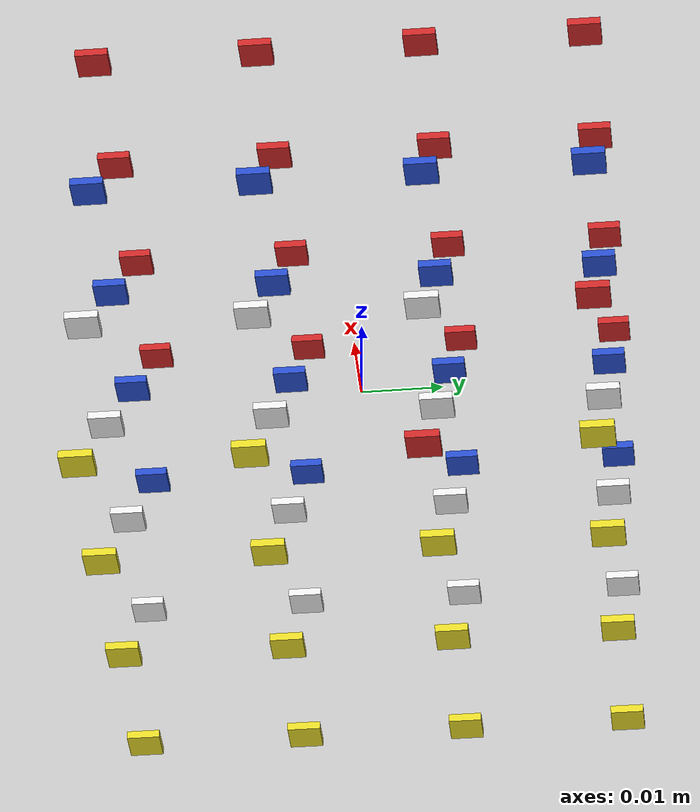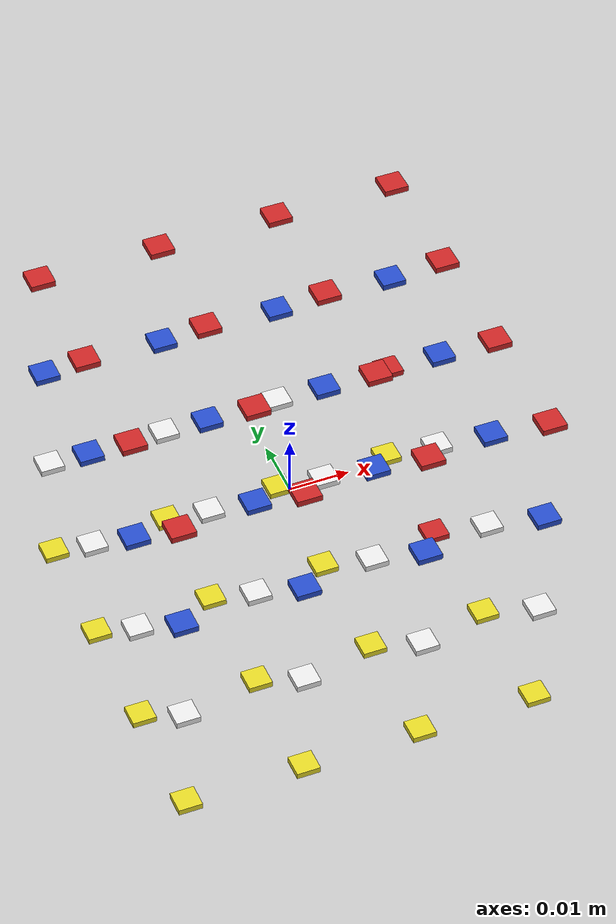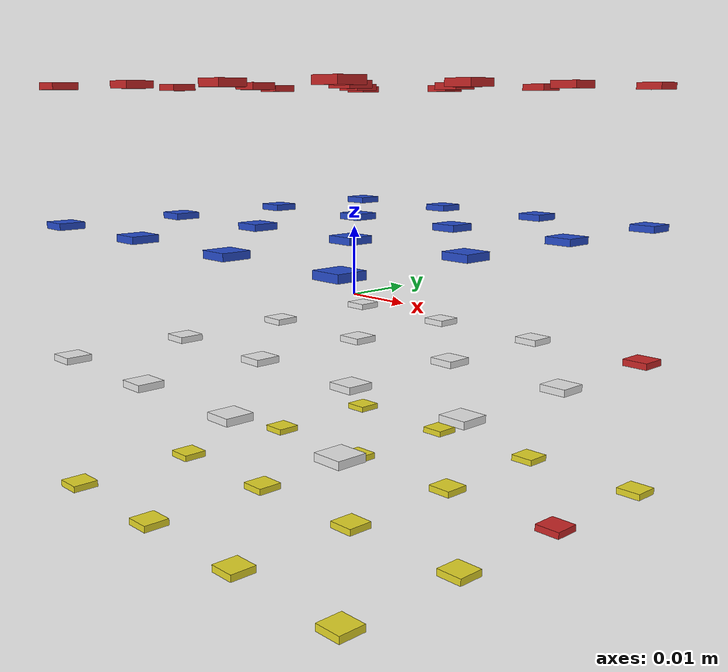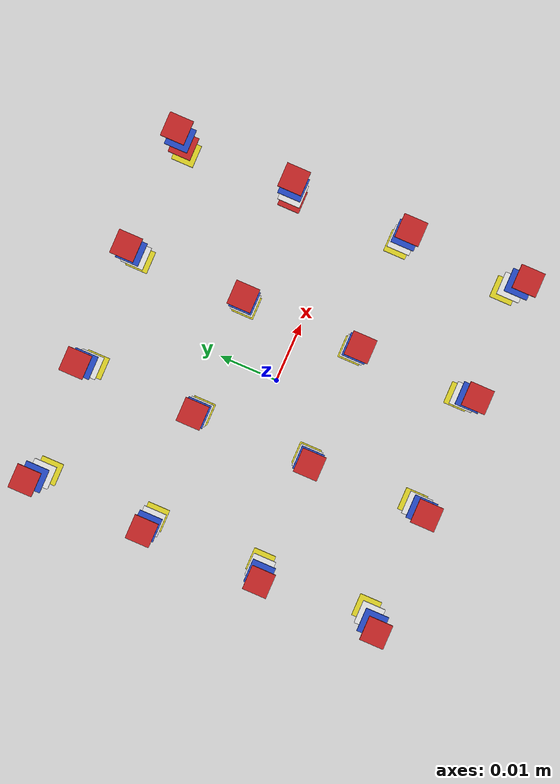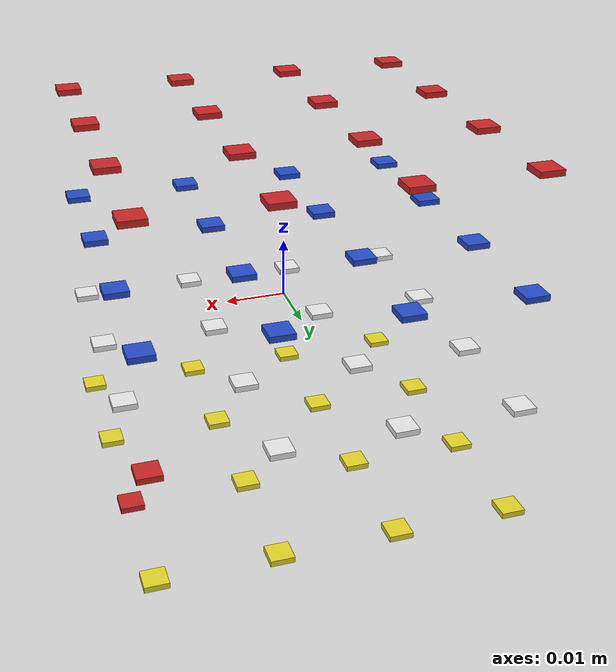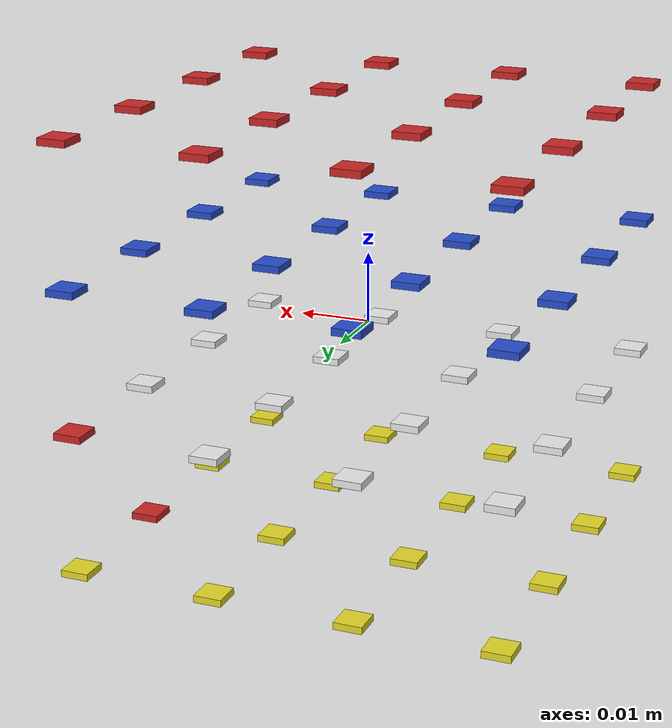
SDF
<?xml version="1.0" ?>
<sdf version='1.5'>
  <model name='imu_cube'>

<!-- 1st ----- top   4st ----- bottom -->

<!-- 1st layer  -->
    <include>
      <uri>model://MPU6050_0</uri>
      <pose>-0.03 0.03 0.03 0 0 0</pose>
    </include>
    <joint name="6050_0_joint" type="fixed">
      <child>6050_0::link</child>
      <parent>iris::base_link</parent>
    </joint>

    <include>
      <uri>model://MPU6050_1</uri>
      <pose>-0.01 0.03 0.03 0 0 0</pose>
    </include>
    <joint name="6050_1_joint" type="fixed">
      <child>6050_1::link</child>
      <parent>iris::base_link</parent>
    </joint>

    <include>
      <uri>model://MPU6050_2</uri>
      <pose>0.01 0.03 0.03 0 0 0</pose>
    </include>
    <joint name="6050_2_joint" type="fixed">
      <child>6050_2::link</child>
      <parent>iris::base_link</parent>
    </joint>

    <include>
      <uri>model://MPU6050_3</uri>
      <pose>0.03 0.03 0.03 0 0 0</pose>
    </include>
    <joint name="6050_3_joint" type="fixed">
      <child>6050_3::link</child>
      <parent>iris::base_link</parent>
    </joint>

    <include>
      <uri>model://MPU6050_4</uri>
      <pose>-0.03 0.01 0.03 0 0 0</pose>
    </include>
    <joint name="6050_4_joint" type="fixed">
      <child>6050_4::link</child>
      <parent>iris::base_link</parent>
    </joint>

    <include>
      <uri>model://MPU6050_5</uri>
      <pose>-0.01 0.01 0.03 0 0 0</pose>
    </include>
    <joint name="6050_5_joint" type="fixed">
      <child>6050_5::link</child>
      <parent>iris::base_link</parent>
    </joint>

    <include>
      <uri>model://MPU6050_6</uri>
      <pose>0.01 0.01 0.03 0 0 0</pose>
    </include>
    <joint name="6050_6_joint" type="fixed">
      <child>6050_6::link</child>
      <parent>iris::base_link</parent>
    </joint>

    <include>
      <uri>model://MPU6050_7</uri>
      <pose>0.03 0.01 0.03 0 0 0</pose>
    </include>
    <joint name="6050_7_joint" type="fixed">
      <child>6050_7::link</child>
      <parent>iris::base_link</parent>
    </joint>

    <include>
      <uri>model://MPU6050_8</uri>
      <pose>-0.03 -0.01 0.03 0 0 0</pose>
    </include>
    <joint name="6050_8_joint" type="fixed">
      <child>6050_8::link</child>
      <parent>iris::base_link</parent>
    </joint>

    <include>
      <uri>model://MPU6050_9</uri>
      <pose>-0.01 -0.01 0.03 0 0 0</pose>
    </include>
    <joint name="6050_9_joint" type="fixed">
      <child>6050_9::link</child>
      <parent>iris::base_link</parent>
    </joint>

    <include>
      <uri>model://MPU6050_10</uri>
      <pose>0.01 -0.01 0.03 0 0 0</pose>
    </include>
    <joint name="6050_10_joint" type="fixed">
      <child>6050_10::link</child>
      <parent>iris::base_link</parent>
    </joint>

    <include>
      <uri>model://MPU6050_11</uri>
      <pose>0.03 -0.01 0.03 0 0 0</pose>
    </include>
    <joint name="6050_11_joint" type="fixed">
      <child>6050_11::link</child>
      <parent>iris::base_link</parent>
    </joint>

    <include>
      <uri>model://MPU6050_12</uri>
      <pose>-0.03 -0.03 0.03 0 0 0</pose>
    </include>
    <joint name="6050_12_joint" type="fixed">
      <child>6050_12::link</child>
      <parent>iris::base_link</parent>
    </joint>

    <include>
      <uri>model://MPU6050_13</uri>
      <pose>-0.01 -0.03 0.03 0 0 0</pose>
    </include>
    <joint name="6050_13_joint" type="fixed">
      <child>6050_13::link</child>
      <parent>iris::base_link</parent>
    </joint>

    <include>
      <uri>model://MPU6050_14</uri>
      <pose>0.01 -0.03 0.03 0 0 0</pose>
    </include>
    <joint name="6050_14_joint" type="fixed">
      <child>6050_14::link</child>
      <parent>iris::base_link</parent>
    </joint>

    <include>
      <uri>model://MPU6050_15</uri>
      <pose>0.03 -0.03 0.03 0 0 0</pose>
    </include>
    <joint name="6050_15_joint" type="fixed">
      <child>6050_15::link</child>
      <parent>iris::base_link</parent>
    </joint>

<!-- 2st layer -->

    <include>
      <uri>model://MPU6500_0</uri>
      <pose>-0.03 0.03 0.01 0 0 0</pose>
    </include>
    <joint name="6500_0_joint" type="fixed">
      <child>6500_0::link</child>
      <parent>iris::base_link</parent>
    </joint>

    <include>
      <uri>model://MPU6500_1</uri>
      <pose>-0.01 0.03 0.01 0 0 0</pose>
    </include>
    <joint name="6500_1_joint" type="fixed">
      <child>6500_1::link</child>
      <parent>iris::base_link</parent>
    </joint>

    <include>
      <uri>model://MPU6500_2</uri>
      <pose>0.01 0.03 0.01 0 0 0</pose>
    </include>
    <joint name="6500_2_joint" type="fixed">
      <child>6500_2::link</child>
      <parent>iris::base_link</parent>
    </joint>

    <include>
      <uri>model://MPU6500_3</uri>
      <pose>0.03 0.03 0.01 0 0 0</pose>
    </include>
    <joint name="6500_3_joint" type="fixed">
      <child>6500_3::link</child>
      <parent>iris::base_link</parent>
    </joint>

    <include>
      <uri>model://MPU6500_4</uri>
      <pose>-0.03 0.01 0.01 0 0 0</pose>
    </include>
    <joint name="6500_4_joint" type="fixed">
      <child>6500_4::link</child>
      <parent>iris::base_link</parent>
    </joint>

    <include>
      <uri>model://MPU6500_5</uri>
      <pose>-0.01 0.01 0.01 0 0 0</pose>
    </include>
    <joint name="6500_5_joint" type="fixed">
      <child>6500_5::link</child>
      <parent>iris::base_link</parent>
    </joint>

    <include>
      <uri>model://MPU6500_6</uri>
      <pose>0.01 0.01 0.01 0 0 0</pose>
    </include>
    <joint name="6500_6_joint" type="fixed">
      <child>6500_6::link</child>
      <parent>iris::base_link</parent>
    </joint>

    <include>
      <uri>model://MPU6500_7</uri>
      <pose>0.03 0.01 0.01 0 0 0</pose>
    </include>
    <joint name="6500_7_joint" type="fixed">
      <child>6500_7::link</child>
      <parent>iris::base_link</parent>
    </joint>

    <include>
      <uri>model://MPU6500_8</uri>
      <pose>-0.03 -0.01 0.01 0 0 0</pose>
    </include>
    <joint name="6500_8_joint" type="fixed">
      <child>6500_8::link</child>
      <parent>iris::base_link</parent>
    </joint>

    <include>
      <uri>model://MPU6500_9</uri>
      <pose>-0.01 -0.01 0.01 0 0 0</pose>
    </include>
    <joint name="6500_9_joint" type="fixed">
      <child>6500_9::link</child>
      <parent>iris::base_link</parent>
    </joint>

    <include>
      <uri>model://MPU6500_10</uri>
      <pose>0.01 -0.01 0.01 0 0 0</pose>
    </include>
    <joint name="6500_10_joint" type="fixed">
      <child>6500_10::link</child>
      <parent>iris::base_link</parent>
    </joint>

    <include>
      <uri>model://MPU6500_11</uri>
      <pose>0.03 -0.01 0.01 0 0 0</pose>
    </include>
    <joint name="6500_11_joint" type="fixed">
      <child>6500_11::link</child>
      <parent>iris::base_link</parent>
    </joint>

    <include>
      <uri>model://MPU6500_12</uri>
      <pose>-0.03 -0.03 0.01 0 0 0</pose>
    </include>
    <joint name="6500_12_joint" type="fixed">
      <child>6500_12::link</child>
      <parent>iris::base_link</parent>
    </joint>

    <include>
      <uri>model://MPU6500_13</uri>
      <pose>-0.01 -0.03 0.01 0 0 0</pose>
    </include>
    <joint name="6500_13_joint" type="fixed">
      <child>6500_13::link</child>
      <parent>iris::base_link</parent>
    </joint>

    <include>
      <uri>model://MPU6500_14</uri>
      <pose>0.01 -0.03 0.01 0 0 0</pose>
    </include>
    <joint name="6500_14_joint" type="fixed">
      <child>6500_14::link</child>
      <parent>iris::base_link</parent>
    </joint>

    <include>
      <uri>model://MPU6500_15</uri>
      <pose>0.03 -0.03 0.01 0 0 0</pose>
    </include>
    <joint name="6500_15_joint" type="fixed">
      <child>6500_15::link</child>
      <parent>iris::base_link</parent>
    </joint>

<!-- 3st layer -->

    <include>
      <uri>model://MPU9150_0</uri>
      <pose>-0.03 0.03 -0.01 0 0 0</pose>
    </include>
    <joint name="9150_0_joint" type="fixed">
      <child>9150_0::link</child>
      <parent>iris::base_link</parent>
    </joint>

    <include>
      <uri>model://MPU9150_1</uri>
      <pose>-0.01 0.03 -0.01 0 0 0</pose>
    </include>
    <joint name="9150_1_joint" type="fixed">
      <child>9150_1::link</child>
      <parent>iris::base_link</parent>
    </joint>

    <include>
      <uri>model://MPU9150_2</uri>
      <pose>0.01 0.03 -0.01 0 0 0</pose>
    </include>
    <joint name="9150_2_joint" type="fixed">
      <child>9150_2::link</child>
      <parent>iris::base_link</parent>
    </joint>

    <include>
      <uri>model://MPU9150_3</uri>
      <pose>0.03 0.03 -0.01 0 0 0</pose>
    </include>
    <joint name="9150_3_joint" type="fixed">
      <child>9150_3::link</child>
      <parent>iris::base_link</parent>
    </joint>

    <include>
      <uri>model://MPU9150_4</uri>
      <pose>-0.03 0.01 -0.01 0 0 0</pose>
    </include>
    <joint name="9150_4_joint" type="fixed">
      <child>9150_4::link</child>
      <parent>iris::base_link</parent>
    </joint>

    <include>
      <uri>model://MPU9150_5</uri>
      <pose>-0.01 0.01 -0.01 0 0 0</pose>
    </include>
    <joint name="9150_5_joint" type="fixed">
      <child>9150_5::link</child>
      <parent>iris::base_link</parent>
    </joint>

    <include>
      <uri>model://MPU9150_6</uri>
      <pose>0.01 0.01 -0.01 0 0 0</pose>
    </include>
    <joint name="9150_6_joint" type="fixed">
      <child>9150_6::link</child>
      <parent>iris::base_link</parent>
    </joint>

    <include>
      <uri>model://MPU9150_7</uri>
      <pose>0.03 0.01 -0.01 0 0 0</pose>
    </include>
    <joint name="9150_7_joint" type="fixed">
      <child>9150_7::link</child>
      <parent>iris::base_link</parent>
    </joint>

    <include>
      <uri>model://MPU9150_8</uri>
      <pose>-0.03 -0.01 -0.01 0 0 0</pose>
    </include>
    <joint name="9150_8_joint" type="fixed">
      <child>9150_8::link</child>
      <parent>iris::base_link</parent>
    </joint>

    <include>
      <uri>model://MPU9150_9</uri>
      <pose>-0.01 -0.01 -0.01 0 0 0</pose>
    </include>
    <joint name="9150_9_joint" type="fixed">
      <child>9150_9::link</child>
      <parent>iris::base_link</parent>
    </joint>

    <include>
      <uri>model://MPU9150_10</uri>
      <pose>0.01 -0.01 -0.01 0 0 0</pose>
    </include>
    <joint name="9150_10_joint" type="fixed">
      <child>9150_10::link</child>
      <parent>iris::base_link</parent>
    </joint>

    <include>
      <uri>model://MPU9150_11</uri>
      <pose>0.03 -0.01 -0.01 0 0 0</pose>
    </include>
    <joint name="9150_11_joint" type="fixed">
      <child>9150_11::link</child>
      <parent>iris::base_link</parent>
    </joint>

    <include>
      <uri>model://MPU9150_12</uri>
      <pose>-0.03 -0.03 -0.01 0 0 0</pose>
    </include>
    <joint name="9150_12_joint" type="fixed">
      <child>9150_12::link</child>
      <parent>iris::base_link</parent>
    </joint>

    <include>
      <uri>model://MPU9150_13</uri>
      <pose>-0.01 -0.03 -0.01 0 0 0</pose>
    </include>
    <joint name="9150_13_joint" type="fixed">
      <child>9150_13::link</child>
      <parent>iris::base_link</parent>
    </joint>

    <include>
      <uri>model://MPU9150_14</uri>
      <pose>0.01 -0.03 -0.01 0 0 0</pose>
    </include>
    <joint name="9150_14_joint" type="fixed">
      <child>9150_14::link</child>
      <parent>iris::base_link</parent>
    </joint>

    <include>
      <uri>model://MPU9150_15</uri>
      <pose>0.03 -0.03 -0.01 0 0 0</pose>
    </include>
    <joint name="9150_15_joint" type="fixed">
      <child>9150_15::link</child>
      <parent>iris::base_link</parent>
    </joint>

<!-- 4st layer -->

    <include>
      <uri>model://MPU9250_0</uri>
      <pose>-0.03 0.03 -0.03 0 0 0</pose>
    </include>
    <joint name="9250_0_joint" type="fixed">
      <child>9250_0::link</child>
      <parent>iris::base_link</parent>
    </joint>

    <include>
      <uri>model://MPU9250_1</uri>
      <pose>-0.01 0.03 -0.03 0 0 0</pose>
    </include>
    <joint name="9250_1_joint" type="fixed">
      <child>9250_1::link</child>
      <parent>iris::base_link</parent>
    </joint>

    <include>
      <uri>model://MPU9250_2</uri>
      <pose>0.01 0.03 -0.03 0 0 0</pose>
    </include>
    <joint name="9250_2_joint" type="fixed">
      <child>9250_2::link</child>
      <parent>iris::base_link</parent>
    </joint>

    <include>
      <uri>model://MPU9250_3</uri>
      <pose>0.03 0.03 -0.03 0 0 0</pose>
    </include>
    <joint name="9250_3_joint" type="fixed">
      <child>9250_3::link</child>
      <parent>iris::base_link</parent>
    </joint>

    <include>
      <uri>model://MPU9250_4</uri>
      <pose>-0.03 0.01 -0.03 0 0 0</pose>
    </include>
    <joint name="9250_4_joint" type="fixed">
      <child>9250_4::link</child>
      <parent>iris::base_link</parent>
    </joint>

    <include>
      <uri>model://MPU9250_5</uri>
      <pose>-0.01 0.01 -0.03 0 0 0</pose>
    </include>
    <joint name="9250_5_joint" type="fixed">
      <child>9250_5::link</child>
      <parent>iris::base_link</parent>
    </joint>

    <include>
      <uri>model://MPU9250_6</uri>
      <pose>0.01 0.01 -0.03 0 0 0</pose>
    </include>
    <joint name="9250_6_joint" type="fixed">
      <child>9250_6::link</child>
      <parent>iris::base_link</parent>
    </joint>

    <include>
      <uri>model://MPU9250_7</uri>
      <pose>0.03 0.01 -0.03 0 0 0</pose>
    </include>
    <joint name="9250_7_joint" type="fixed">
      <child>9250_7::link</child>
      <parent>iris::base_link</parent>
    </joint>

    <include>
      <uri>model://MPU9250_8</uri>
      <pose>-0.03 -0.01 -0.03 0 0 0</pose>
    </include>
    <joint name="9250_8_joint" type="fixed">
      <child>9250_8::link</child>
      <parent>iris::base_link</parent>
    </joint>

    <include>
      <uri>model://MPU9250_9</uri>
      <pose>-0.01 -0.01 -0.03 0 0 0</pose>
    </include>
    <joint name="9250_9_joint" type="fixed">
      <child>9250_9::link</child>
      <parent>iris::base_link</parent>
    </joint>

    <include>
      <uri>model://MPU9250_10</uri>
      <pose>0.01 -0.01 -0.03 0 0 0</pose>
    </include>
    <joint name="9250_10_joint" type="fixed">
      <child>9250_10::link</child>
      <parent>iris::base_link</parent>
    </joint>

    <include>
      <uri>model://MPU9250_11</uri>
      <pose>0.03 -0.01 -0.03 0 0 0</pose>
    </include>
    <joint name="9250_11_joint" type="fixed">
      <child>9250_11::link</child>
      <parent>iris::base_link</parent>
    </joint>

    <include>
      <uri>model://MPU9250_12</uri>
      <pose>-0.03 -0.03 -0.03 0 0 0</pose>
    </include>
    <joint name="9250_12_joint" type="fixed">
      <child>9250_12::link</child>
      <parent>iris::base_link</parent>
    </joint>

    <include>
      <uri>model://MPU9250_13</uri>
      <pose>-0.01 -0.03 -0.03 0 0 0</pose>
    </include>
    <joint name="9250_13_joint" type="fixed">
      <child>9250_13::link</child>
      <parent>iris::base_link</parent>
    </joint>

    <include>
      <uri>model://MPU9250_14</uri>
      <pose>0.01 -0.03 -0.03 0 0 0</pose>
    </include>
    <joint name="9250_14_joint" type="fixed">
      <child>9250_14::link</child>
      <parent>iris::base_link</parent>
    </joint>

    <include>
      <uri>model://MPU9250_15</uri>
      <pose>0.03 -0.03 -0.03 0 0 0</pose>
    </include>
    <joint name="9250_15_joint" type="fixed">
      <child>9250_15::link</child>
      <parent>iris::base_link</parent>
    </joint>

  </model>
</sdf>
<!-- vim: set noet fenc=utf-8 ff=unix sts=0 sw=4 ts=4 : -->

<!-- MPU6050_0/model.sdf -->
<sdf version="1.5">
  <model name="MPU6050_0">
    <link name="link">
      <inertial>
        <pose>0 0 0 0 0 0</pose>
        <mass>0.001</mass>
        <inertia>
          <ixx>1.67</ixx>
          <ixy>0</ixy>
          <ixz>0</ixz>
          <iyy>1.67</iyy>
          <iyz>0</iyz>
          <izz>1.67</izz>
        </inertia>
      </inertial>
      <visual name="visual">
        <pose>0 0 0 0 0 0</pose>
        <geometry>
          <box>
            <size>0.004 0.004 0.001</size>
          </box>
        </geometry>
	<material>
          <script>
            <name>Gazebo/Red</name>
            <uri>__default__</uri>
          </script>
        </material>
      </visual>
      <sensor name='IMU6050_0' type='imu'>
        <always_on>1</always_on>
        <update_rate>1000</update_rate>
        <visualize>1</visualize>
        <topic>__default_topic__</topic>
        <imu/>

	<pose>0 0 0 0 0 0</pose>
      </sensor>
    </link>
          <plugin name="imu_plugin" filename="libhector_gazebo_ros_imu.so">
            <updateRate>1000</updateRate>
            <bodyName>link</bodyName>
            <topicName>/mpu6050_0</topicName>
            <serviceName>/mpu6050_0/calibrate</serviceName>
            <accelOffset>0.0 0.0 0.0</accelOffset>
            <accelDrift>0.0 0.0 0.0</accelDrift>
            <accelDriftFrequency>0.0 0.0 0.0</accelDriftFrequency>
            <accelGaussianNoise>0.035 0.035 0.035</accelGaussianNoise>
            <rateOffset>0.0 0.0 0.0</rateOffset>
            <rateDrift>0.0 0.0 0.0</rateDrift>
            <rateDriftFrequency>0.0 0.0 0.0</rateDriftFrequency>
            <rateGaussianNoise>0.05 0.05 0.05</rateGaussianNoise>
            <headingOffset>0.0</headingOffset>
            <headingDrift>0.0</headingDrift>
            <headingDriftFrequency>0.0</headingDriftFrequency>
            <headingGaussianNoise>0.0</headingGaussianNoise>
            <rpyOffset>0.0 0.0 0.0</rpyOffset>
            <xyzOffset>0.0 0.0 0.0</xyzOffset>
            <gaussianNoise>0.0</gaussianNoise>
        </plugin>
  </model>
</sdf>

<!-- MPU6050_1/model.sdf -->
<sdf version="1.5">
  <model name="MPU6050_1">
    <link name="link">
      <inertial>
        <pose>0 0 0 0 0 0</pose>
        <mass>0.001</mass>
        <inertia>
          <ixx>1.67</ixx>
          <ixy>0</ixy>
          <ixz>0</ixz>
          <iyy>1.67</iyy>
          <iyz>0</iyz>
          <izz>1.67</izz>
        </inertia>
      </inertial>
      <visual name="visual">
        <pose>0 0 0 0 0 0</pose>
        <geometry>
          <box>
            <size>0.004 0.004 0.001</size>
          </box>
        </geometry>
	<material>
          <script>
            <name>Gazebo/Red</name>
            <uri>__default__</uri>
          </script>
        </material>
      </visual>
      <sensor name='IMU6050' type='imu'>
        <always_on>1</always_on>
        <update_rate>1000</update_rate>
        <visualize>1</visualize>
        <topic>__default_topic__</topic>
        <imu/>

	<pose>0 0 0 0 0 0</pose>
      </sensor>
    </link>
          <plugin name="imu_plugin" filename="libhector_gazebo_ros_imu.so">
            <updateRate>1000</updateRate>
            <bodyName>link</bodyName>
            <topicName>/mpu6050_1</topicName>
            <serviceName>/mpu6050_1/calibrate</serviceName>
            <accelOffset>0.0 0.0 0.0</accelOffset>
            <accelDrift>0.0 0.0 0.0</accelDrift>
            <accelDriftFrequency>0.0 0.0 0.0</accelDriftFrequency>
            <accelGaussianNoise>0.0351 0.0351 0.0351</accelGaussianNoise>
            <rateOffset>0.0 0.0 0.0</rateOffset>
            <rateDrift>0.0 0.0 0.0</rateDrift>
            <rateDriftFrequency>0.0 0.0 0.0</rateDriftFrequency>
            <rateGaussianNoise>0.0501 0.0501 0.0501</rateGaussianNoise>
            <headingOffset>0.0</headingOffset>
            <headingDrift>0.0</headingDrift>
            <headingDriftFrequency>0.0</headingDriftFrequency>
            <headingGaussianNoise>0.0</headingGaussianNoise>
            <rpyOffset>0.0 0.0 0.0</rpyOffset>
            <xyzOffset>0.0 0.0 0.0</xyzOffset>
            <gaussianNoise>0.0</gaussianNoise>
        </plugin>
  </model>
</sdf>

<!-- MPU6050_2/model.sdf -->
<sdf version="1.5">
  <model name="MPU6050_2">
    <link name="link">
      <inertial>
        <pose>0 0 0 0 0 0</pose>
        <mass>0.001</mass>
        <inertia>
          <ixx>1.67</ixx>
          <ixy>0</ixy>
          <ixz>0</ixz>
          <iyy>1.67</iyy>
          <iyz>0</iyz>
          <izz>1.67</izz>
        </inertia>
      </inertial>
      <visual name="visual">
        <pose>0 0 0 0 0 0</pose>
        <geometry>
          <box>
            <size>0.004 0.004 0.001</size>
          </box>
        </geometry>
	<material>
          <script>
            <name>Gazebo/Red</name>
            <uri>__default__</uri>
          </script>
        </material>
      </visual>
      <sensor name='IMU6050' type='imu'>
        <always_on>1</always_on>
        <update_rate>1000</update_rate>
        <visualize>1</visualize>
        <topic>__default_topic__</topic>
        <imu/>

	<pose>0 0 0 0 0 0</pose>
      </sensor>
    </link>
          <plugin name="imu_plugin" filename="libhector_gazebo_ros_imu.so">
            <updateRate>100</updateRate>
            <bodyName>link</bodyName>
            <topicName>/mpu6050_2</topicName>
            <serviceName>/mpu6050_2/calibrate</serviceName>
            <accelOffset>0.0 0.0 0.0</accelOffset>
            <accelDrift>0.0 0.0 0.0</accelDrift>
            <accelDriftFrequency>0.0 0.0 0.0</accelDriftFrequency>
            <accelGaussianNoise>0.0352 0.0352 0.0352</accelGaussianNoise>
            <rateOffset>0.0 0.0 0.0</rateOffset>
            <rateDrift>0.0 0.0 0.0</rateDrift>
            <rateDriftFrequency>0.0 0.0 0.0</rateDriftFrequency>
            <rateGaussianNoise>0.0502 0.0502 0.0502</rateGaussianNoise>
            <headingOffset>0.0</headingOffset>
            <headingDrift>0.0</headingDrift>
            <headingDriftFrequency>0.0</headingDriftFrequency>
            <headingGaussianNoise>0.0</headingGaussianNoise>
            <rpyOffset>0.0 0.0 0.0</rpyOffset>
            <xyzOffset>0.0 0.0 0.0</xyzOffset>
            <gaussianNoise>0.0</gaussianNoise>
        </plugin>
  </model>
</sdf>

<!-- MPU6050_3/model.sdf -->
<sdf version="1.5">
  <model name="MPU6050_3">
    <link name="link">
      <inertial>
        <pose>0 0 0 0 0 0</pose>
        <mass>0.001</mass>
        <inertia>
          <ixx>1.67</ixx>
          <ixy>0</ixy>
          <ixz>0</ixz>
          <iyy>1.67</iyy>
          <iyz>0</iyz>
          <izz>1.67</izz>
        </inertia>
      </inertial>
      <visual name="visual">
        <pose>0 0 0 0 0 0</pose>
        <geometry>
          <box>
            <size>0.004 0.004 0.001</size>
          </box>
        </geometry>
	<material>
          <script>
            <name>Gazebo/Red</name>
            <uri>__default__</uri>
          </script>
        </material>
      </visual>
      <sensor name='IMU6050' type='imu'>
        <always_on>1</always_on>
        <update_rate>1000</update_rate>
        <visualize>1</visualize>
        <topic>__default_topic__</topic>
        <imu/>

	<pose>0 0 0 0 0 0</pose>
      </sensor>
    </link>
          <plugin name="imu_plugin" filename="libhector_gazebo_ros_imu.so">
            <updateRate>100</updateRate>
            <bodyName>link</bodyName>
            <topicName>/mpu6050_3</topicName>
            <serviceName>/mpu6050_3/calibrate</serviceName>
            <accelOffset>0.0 0.0 0.0</accelOffset>
            <accelDrift>0.0 0.0 0.0</accelDrift>
            <accelDriftFrequency>0.0353 0.0353 0.0353</accelDriftFrequency>
            <accelGaussianNoise>0.0 0.0 0.0</accelGaussianNoise>
            <rateOffset>0.0 0.0 0.0</rateOffset>
            <rateDrift>0.0 0.0 0.0</rateDrift>
            <rateDriftFrequency>0.0 0.0 0.0</rateDriftFrequency>
            <rateGaussianNoise>0.0503 0.0503 0.0503</rateGaussianNoise>
            <headingOffset>0.0</headingOffset>
            <headingDrift>0.0</headingDrift>
            <headingDriftFrequency>0.0</headingDriftFrequency>
            <headingGaussianNoise>0.0</headingGaussianNoise>
            <rpyOffset>0.0 0.0 0.0</rpyOffset>
            <xyzOffset>0.0 0.0 0.0</xyzOffset>
            <gaussianNoise>0.0</gaussianNoise>
        </plugin>
  </model>
</sdf>

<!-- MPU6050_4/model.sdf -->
<sdf version="1.5">
  <model name="MPU6050_4">
    <link name="link">
      <inertial>
        <pose>0 0 0 0 0 0</pose>
        <mass>0.001</mass>
        <inertia>
          <ixx>1.67</ixx>
          <ixy>0</ixy>
          <ixz>0</ixz>
          <iyy>1.67</iyy>
          <iyz>0</iyz>
          <izz>1.67</izz>
        </inertia>
      </inertial>
      <visual name="visual">
        <pose>0 0 0 0 0 0</pose>
        <geometry>
          <box>
            <size>0.004 0.004 0.001</size>
          </box>
        </geometry>
	<material>
          <script>
            <name>Gazebo/Red</name>
            <uri>__default__</uri>
          </script>
        </material>
      </visual>
      <sensor name='IMU6050' type='imu'>
        <always_on>1</always_on>
        <update_rate>1000</update_rate>
        <visualize>1</visualize>
        <topic>__default_topic__</topic>
        <imu/>

	<pose>0 0 0 0 0 0</pose>
      </sensor>
    </link>
          <plugin name="imu_plugin" filename="libhector_gazebo_ros_imu.so">
            <updateRate>100</updateRate>
            <bodyName>link</bodyName>
            <topicName>/mpu6050_4</topicName>
            <serviceName>/mpu6050_4/calibrate</serviceName>
            <accelOffset>0.0 0.0 0.0</accelOffset>
            <accelDrift>0.0 0.0 0.0</accelDrift>
            <accelDriftFrequency>0.0 0.0 0.0</accelDriftFrequency>
            <accelGaussianNoise>0.0354 0.0354 0.0354</accelGaussianNoise>
            <rateOffset>0.0 0.0 0.0</rateOffset>
            <rateDrift>0.0 0.0 0.0</rateDrift>
            <rateDriftFrequency>0.0 0.0 0.0</rateDriftFrequency>
            <rateGaussianNoise>0.0504 0.0504 0.0504</rateGaussianNoise>
            <headingOffset>0.0</headingOffset>
            <headingDrift>0.0</headingDrift>
            <headingDriftFrequency>0.0</headingDriftFrequency>
            <headingGaussianNoise>0.0</headingGaussianNoise>
            <rpyOffset>0.0 0.0 0.0</rpyOffset>
            <xyzOffset>0.0 0.0 0.0</xyzOffset>
            <gaussianNoise>0.0</gaussianNoise>
        </plugin>
  </model>
</sdf>

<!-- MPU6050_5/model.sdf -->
<sdf version="1.5">
  <model name="MPU6050_5">
    <link name="link">
      <inertial>
        <pose>0 0 0 0 0 0</pose>
        <mass>0.001</mass>
        <inertia>
          <ixx>1.67</ixx>
          <ixy>0</ixy>
          <ixz>0</ixz>
          <iyy>1.67</iyy>
          <iyz>0</iyz>
          <izz>1.67</izz>
        </inertia>
      </inertial>
      <visual name="visual">
        <pose>0 0 0 0 0 0</pose>
        <geometry>
          <box>
            <size>0.004 0.004 0.001</size>
          </box>
        </geometry>
	<material>
          <script>
            <name>Gazebo/Red</name>
            <uri>__default__</uri>
          </script>
        </material>
      </visual>
      <sensor name='IMU6050_5' type='imu'>
        <always_on>1</always_on>
        <update_rate>1000</update_rate>
        <visualize>1</visualize>
        <topic>__default_topic__</topic>
        <imu/>

	<pose>0 0 0 0 0 0</pose>
      </sensor>
    </link>
          <plugin name="imu_plugin" filename="libhector_gazebo_ros_imu.so">
            <updateRate>100</updateRate>
            <bodyName>link</bodyName>
            <topicName>/mpu6050_5</topicName>
            <serviceName>/mpu6050_5/calibrate</serviceName>
            <accelOffset>0.0 0.0 0.0</accelOffset>
            <accelDrift>0.0 0.0 0.0</accelDrift>
            <accelDriftFrequency>0.0 0.0 0.0</accelDriftFrequency>
            <accelGaussianNoise>0.0355 0.0355 0.0355</accelGaussianNoise>
            <rateOffset>0.0 0.0 0.0</rateOffset>
            <rateDrift>0.0 0.0 0.0</rateDrift>
            <rateDriftFrequency>0.0 0.0 0.0</rateDriftFrequency>
            <rateGaussianNoise>0.0505 0.0505 0.0505</rateGaussianNoise>
            <headingOffset>0.0</headingOffset>
            <headingDrift>0.0</headingDrift>
            <headingDriftFrequency>0.0</headingDriftFrequency>
            <headingGaussianNoise>0.0</headingGaussianNoise>
            <rpyOffset>0.0 0.0 0.0</rpyOffset>
            <xyzOffset>0.0 0.0 0.0</xyzOffset>
            <gaussianNoise>0.0</gaussianNoise>
        </plugin>
  </model>
</sdf>

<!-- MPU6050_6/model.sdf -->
<sdf version="1.5">
  <model name="MPU6050_6">
    <link name="link">
      <inertial>
        <pose>0 0 0 0 0 0</pose>
        <mass>0.001</mass>
        <inertia>
          <ixx>1.67</ixx>
          <ixy>0</ixy>
          <ixz>0</ixz>
          <iyy>1.67</iyy>
          <iyz>0</iyz>
          <izz>1.67</izz>
        </inertia>
      </inertial>
      <visual name="visual">
        <pose>0 0 0 0 0 0</pose>
        <geometry>
          <box>
            <size>0.004 0.004 0.001</size>
          </box>
        </geometry>
	<material>
          <script>
            <name>Gazebo/Red</name>
            <uri>__default__</uri>
          </script>
        </material>
      </visual>
      <sensor name='IMU6050_6' type='imu'>
        <always_on>1</always_on>
        <update_rate>1000</update_rate>
        <visualize>1</visualize>
        <topic>__default_topic__</topic>
        <imu/>

	<pose>0 0 0 0 0 0</pose>
      </sensor>
    </link>
          <plugin name="imu_plugin" filename="libhector_gazebo_ros_imu.so">
            <updateRate>100</updateRate>
            <bodyName>link</bodyName>
            <topicName>/mpu6050_6</topicName>
            <serviceName>/mpu6050_6/calibrate</serviceName>
            <accelOffset>0.0 0.0 0.0</accelOffset>
            <accelDrift>0.0 0.0 0.0</accelDrift>
            <accelDriftFrequency>0.0 0.0 0.0</accelDriftFrequency>
            <accelGaussianNoise>0.0356 0.0356 0.0356</accelGaussianNoise>
            <rateOffset>0.0 0.0 0.0</rateOffset>
            <rateDrift>0.0 0.0 0.0</rateDrift>
            <rateDriftFrequency>0.0 0.0 0.0</rateDriftFrequency>
            <rateGaussianNoise>0.0506 0.0506 0.0506</rateGaussianNoise>
            <headingOffset>0.0</headingOffset>
            <headingDrift>0.0</headingDrift>
            <headingDriftFrequency>0.0</headingDriftFrequency>
            <headingGaussianNoise>0.0</headingGaussianNoise>
            <rpyOffset>0.0 0.0 0.0</rpyOffset>
            <xyzOffset>0.0 0.0 0.0</xyzOffset>
            <gaussianNoise>0.0</gaussianNoise>
        </plugin>
  </model>
</sdf>

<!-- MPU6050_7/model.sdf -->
<sdf version="1.5">
  <model name="MPU6050_7">
    <link name="link">
      <inertial>
        <pose>0 0 0 0 0 0</pose>
        <mass>0.001</mass>
        <inertia>
          <ixx>1.67</ixx>
          <ixy>0</ixy>
          <ixz>0</ixz>
          <iyy>1.67</iyy>
          <iyz>0</iyz>
          <izz>1.67</izz>
        </inertia>
      </inertial>
      <visual name="visual">
        <pose>0 0 0 0 0 0</pose>
        <geometry>
          <box>
            <size>0.004 0.004 0.001</size>
          </box>
        </geometry>
	<material>
          <script>
            <name>Gazebo/Red</name>
            <uri>__default__</uri>
          </script>
        </material>
      </visual>
      <sensor name='IMU6050_7' type='imu'>
        <always_on>1</always_on>
        <update_rate>1000</update_rate>
        <visualize>1</visualize>
        <topic>__default_topic__</topic>
        <imu/>

	<pose>0 0 0 0 0 0</pose>
      </sensor>
    </link>
          <plugin name="imu_plugin" filename="libhector_gazebo_ros_imu.so">
            <updateRate>100</updateRate>
            <bodyName>link</bodyName>
            <topicName>/mpu6050_7</topicName>
            <serviceName>/mpu6050_7/calibrate</serviceName>
            <accelOffset>0.0 0.0 0.0</accelOffset>
            <accelDrift>0.0 0.0 0.0</accelDrift>
            <accelDriftFrequency>0.0 0.0 0.0</accelDriftFrequency>
            <accelGaussianNoise>0.0357 0.0357 0.0357</accelGaussianNoise>
            <rateOffset>0.0 0.0 0.0</rateOffset>
            <rateDrift>0.0 0.0 0.0</rateDrift>
            <rateDriftFrequency>0.0 0.0 0.0</rateDriftFrequency>
            <rateGaussianNoise>0.0507 0.0507 0.0507</rateGaussianNoise>
            <headingOffset>0.0</headingOffset>
            <headingDrift>0.0</headingDrift>
            <headingDriftFrequency>0.0</headingDriftFrequency>
            <headingGaussianNoise>0.0</headingGaussianNoise>
            <rpyOffset>0.0 0.0 0.0</rpyOffset>
            <xyzOffset>0.0 0.0 0.0</xyzOffset>
            <gaussianNoise>0.0</gaussianNoise>
        </plugin>
  </model>
</sdf>

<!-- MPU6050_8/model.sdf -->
<sdf version="1.5">
  <model name="MPU6050_8">
    <link name="link">
      <inertial>
        <pose>0 0 0 0 0 0</pose>
        <mass>0.001</mass>
        <inertia>
          <ixx>1.67</ixx>
          <ixy>0</ixy>
          <ixz>0</ixz>
          <iyy>1.67</iyy>
          <iyz>0</iyz>
          <izz>1.67</izz>
        </inertia>
      </inertial>
      <visual name="visual">
        <pose>0 0 0 0 0 0</pose>
        <geometry>
          <box>
            <size>0.004 0.004 0.001</size>
          </box>
        </geometry>
	<material>
          <script>
            <name>Gazebo/Red</name>
            <uri>__default__</uri>
          </script>
        </material>
      </visual>
      <sensor name='IMU6050' type='imu'>
        <always_on>1</always_on>
        <update_rate>1000</update_rate>
        <visualize>1</visualize>
        <topic>__default_topic__</topic>
        <imu/>

	<pose>0 0 0 0 0 0</pose>
      </sensor>
    </link>
          <plugin name="imu_plugin" filename="libhector_gazebo_ros_imu.so">
            <updateRate>100</updateRate>
            <bodyName>link</bodyName>
            <topicName>/mpu6050_8</topicName>
            <serviceName>/mpu6050_8/calibrate</serviceName>
            <accelOffset>0.0 0.0 0.0</accelOffset>
            <accelDrift>0.0 0.0 0.0</accelDrift>
            <accelDriftFrequency>0.0 0.0 0.0</accelDriftFrequency>
            <accelGaussianNoise>0.0341 0.0341 0.0341</accelGaussianNoise>
            <rateOffset>0.0 0.0 0.0</rateOffset>
            <rateDrift>0.0 0.0 0.0</rateDrift>
            <rateDriftFrequency>0.0 0.0 0.0</rateDriftFrequency>
            <rateGaussianNoise>0.0491 0.0491 0.0491</rateGaussianNoise>
            <headingOffset>0.0</headingOffset>
            <headingDrift>0.0</headingDrift>
            <headingDriftFrequency>0.0</headingDriftFrequency>
            <headingGaussianNoise>0.0</headingGaussianNoise>
            <rpyOffset>0.0 0.0 0.0</rpyOffset>
            <xyzOffset>0.0 0.0 0.0</xyzOffset>
            <gaussianNoise>0.0</gaussianNoise>
        </plugin>
  </model>
</sdf>

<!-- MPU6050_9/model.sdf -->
<sdf version="1.5">
  <model name="MPU6050_9">
    <link name="link">
      <inertial>
        <pose>0 0 0 0 0 0</pose>
        <mass>0.001</mass>
        <inertia>
          <ixx>1.67</ixx>
          <ixy>0</ixy>
          <ixz>0</ixz>
          <iyy>1.67</iyy>
          <iyz>0</iyz>
          <izz>1.67</izz>
        </inertia>
      </inertial>
      <visual name="visual">
        <pose>0 0 0 0 0 0</pose>
        <geometry>
          <box>
            <size>0.004 0.004 0.001</size>
          </box>
        </geometry>
	<material>
          <script>
            <name>Gazebo/Red</name>
            <uri>__default__</uri>
          </script>
        </material>
      </visual>
      <sensor name='IMU6050' type='imu'>
        <always_on>1</always_on>
        <update_rate>1000</update_rate>
        <visualize>1</visualize>
        <topic>__default_topic__</topic>
        <imu/>

	<pose>0 0 0 0 0 0</pose>
      </sensor>
    </link>
          <plugin name="imu_plugin" filename="libhector_gazebo_ros_imu.so">
            <updateRate>100</updateRate>
            <bodyName>link</bodyName>
            <topicName>/mpu6050_9</topicName>
            <serviceName>/mpu6050_9/calibrate</serviceName>
            <accelOffset>0.0 0.0 0.0</accelOffset>
            <accelDrift>0.0 0.0 0.0</accelDrift>
            <accelDriftFrequency>0.0 0.0 0.0</accelDriftFrequency>
            <accelGaussianNoise>0.0342 0.0342 0.0342</accelGaussianNoise>
            <rateOffset>0.0 0.0 0.0</rateOffset>
            <rateDrift>0.0 0.0 0.0</rateDrift>
            <rateDriftFrequency>0.0 0.0 0.0</rateDriftFrequency>
            <rateGaussianNoise>0.0492 0.0492 0.0492</rateGaussianNoise>
            <headingOffset>0.0</headingOffset>
            <headingDrift>0.0</headingDrift>
            <headingDriftFrequency>0.0</headingDriftFrequency>
            <headingGaussianNoise>0.0</headingGaussianNoise>
            <rpyOffset>0.0 0.0 0.0</rpyOffset>
            <xyzOffset>0.0 0.0 0.0</xyzOffset>
            <gaussianNoise>0.0</gaussianNoise>
        </plugin>
  </model>
</sdf>

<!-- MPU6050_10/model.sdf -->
<sdf version="1.5">
  <model name="MPU6050_10">
    <link name="link">
      <inertial>
        <pose>0 0 0 0 0 0</pose>
        <mass>0.001</mass>
        <inertia>
          <ixx>1.67</ixx>
          <ixy>0</ixy>
          <ixz>0</ixz>
          <iyy>1.67</iyy>
          <iyz>0</iyz>
          <izz>1.67</izz>
        </inertia>
      </inertial>
      <visual name="visual">
        <pose>0 0 0 0 0 0</pose>
        <geometry>
          <box>
            <size>0.004 0.004 0.001</size>
          </box>
        </geometry>
	<material>
          <script>
            <name>Gazebo/Red</name>
            <uri>__default__</uri>
          </script>
        </material>
      </visual>
      <sensor name='IMU6050' type='imu'>
        <always_on>1</always_on>
        <update_rate>1000</update_rate>
        <visualize>1</visualize>
        <topic>__default_topic__</topic>
        <imu/>

	<pose>0 0 0 0 0 0</pose>
      </sensor>
    </link>
          <plugin name="imu_plugin" filename="libhector_gazebo_ros_imu.so">
            <updateRate>1000</updateRate>
            <bodyName>link</bodyName>
            <topicName>/mpu6050_10</topicName>
            <serviceName>/mpu6050_10/calibrate</serviceName>
            <accelOffset>0.0 0.0 0.0</accelOffset>
            <accelDrift>0.0 0.0 0.0</accelDrift>
            <accelDriftFrequency>0.0 0.0 0.0</accelDriftFrequency>
            <accelGaussianNoise>0.0343 0.0343 0.0344</accelGaussianNoise>
            <rateOffset>0.0 0.0 0.0</rateOffset>
            <rateDrift>0.0 0.0 0.0</rateDrift>
            <rateDriftFrequency>0.0 0.0 0.0</rateDriftFrequency>
            <rateGaussianNoise>0.0493 0.0493 0.0493</rateGaussianNoise>
            <headingOffset>0.0</headingOffset>
            <headingDrift>0.0</headingDrift>
            <headingDriftFrequency>0.0</headingDriftFrequency>
            <headingGaussianNoise>0.0</headingGaussianNoise>
            <rpyOffset>0.0 0.0 0.0</rpyOffset>
            <xyzOffset>0.0 0.0 0.0</xyzOffset>
            <gaussianNoise>0.0</gaussianNoise>
        </plugin>
  </model>
</sdf>

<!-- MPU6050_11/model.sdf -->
<sdf version="1.5">
  <model name="MPU6050_2">
    <link name="link">
      <inertial>
        <pose>0 0 0 0 0 0</pose>
        <mass>0.001</mass>
        <inertia>
          <ixx>1.67</ixx>
          <ixy>0</ixy>
          <ixz>0</ixz>
          <iyy>1.67</iyy>
          <iyz>0</iyz>
          <izz>1.67</izz>
        </inertia>
      </inertial>
      <visual name="visual">
        <pose>0 0 0 0 0 0</pose>
        <geometry>
          <box>
            <size>0.004 0.004 0.001</size>
          </box>
        </geometry>
	<material>
          <script>
            <name>Gazebo/Red</name>
            <uri>__default__</uri>
          </script>
        </material>
      </visual>
      <sensor name='IMU6050' type='imu'>
        <always_on>1</always_on>
        <update_rate>1000</update_rate>
        <visualize>1</visualize>
        <topic>__default_topic__</topic>
        <imu/>

	<pose>0 0 0 0 0 0</pose>
      </sensor>
    </link>
          <plugin name="imu_plugin" filename="libhector_gazebo_ros_imu.so">
            <updateRate>1000</updateRate>
            <bodyName>link</bodyName>
            <topicName>/mpu6050_11</topicName>
            <serviceName>/mpu6050_11/calibrate</serviceName>
            <accelOffset>0.0 0.0 0.0</accelOffset>
            <accelDrift>0.0 0.0 0.0</accelDrift>
            <accelDriftFrequency>0.0 0.0 0.0</accelDriftFrequency>
            <accelGaussianNoise>0.0344 0.0344 0.0344</accelGaussianNoise>
            <rateOffset>0.0 0.0 0.0</rateOffset>
            <rateDrift>0.0 0.0 0.0</rateDrift>
            <rateDriftFrequency>0.0 0.0 0.0</rateDriftFrequency>
            <rateGaussianNoise>0.0494 0.0494 0.0494</rateGaussianNoise>
            <headingOffset>0.0</headingOffset>
            <headingDrift>0.0</headingDrift>
            <headingDriftFrequency>0.0</headingDriftFrequency>
            <headingGaussianNoise>0.0</headingGaussianNoise>
            <rpyOffset>0.0 0.0 0.0</rpyOffset>
            <xyzOffset>0.0 0.0 0.0</xyzOffset>
            <gaussianNoise>0.0</gaussianNoise>
        </plugin>
  </model>
</sdf>

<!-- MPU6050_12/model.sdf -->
<sdf version="1.5">
  <model name="MPU6050_12">
    <link name="link">
      <inertial>
        <pose>0 0 0 0 0 0</pose>
        <mass>0.001</mass>
        <inertia>
          <ixx>1.67</ixx>
          <ixy>0</ixy>
          <ixz>0</ixz>
          <iyy>1.67</iyy>
          <iyz>0</iyz>
          <izz>1.67</izz>
        </inertia>
      </inertial>
      <visual name="visual">
        <pose>0 0 0 0 0 0</pose>
        <geometry>
          <box>
            <size>0.004 0.004 0.001</size>
          </box>
        </geometry>
	<material>
          <script>
            <name>Gazebo/Red</name>
            <uri>__default__</uri>
          </script>
        </material>
      </visual>
      <sensor name='IMU6050' type='imu'>
        <always_on>1</always_on>
        <update_rate>1000</update_rate>
        <visualize>1</visualize>
        <topic>__default_topic__</topic>
        <imu/>

	<pose>0 0 0 0 0 0</pose>
      </sensor>
    </link>
          <plugin name="imu_plugin" filename="libhector_gazebo_ros_imu.so">
            <updateRate>1000</updateRate>
            <bodyName>link</bodyName>
            <topicName>/mpu6050_12</topicName>
            <serviceName>/mpu6050_12/calibrate</serviceName>
            <accelOffset>0.0 0.0 0.0</accelOffset>
            <accelDrift>0.0 0.0 0.0</accelDrift>
            <accelDriftFrequency>0.0 0.0 0.0</accelDriftFrequency>
            <accelGaussianNoise>0.0345 0.0345 0.0345</accelGaussianNoise>
            <rateOffset>0.0 0.0 0.0</rateOffset>
            <rateDrift>0.0 0.0 0.0</rateDrift>
            <rateDriftFrequency>0.0 0.0 0.0</rateDriftFrequency>
            <rateGaussianNoise>0.0495 0.0495 0.0495</rateGaussianNoise>
            <headingOffset>0.0</headingOffset>
            <headingDrift>0.0</headingDrift>
            <headingDriftFrequency>0.0</headingDriftFrequency>
            <headingGaussianNoise>0.0</headingGaussianNoise>
            <rpyOffset>0.0 0.0 0.0</rpyOffset>
            <xyzOffset>0.0 0.0 0.0</xyzOffset>
            <gaussianNoise>0.0</gaussianNoise>
        </plugin>
  </model>
</sdf>

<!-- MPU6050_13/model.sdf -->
<sdf version="1.5">
  <model name="MPU6050_13">
    <link name="link">
      <inertial>
        <pose>0 0 0 0 0 0</pose>
        <mass>0.001</mass>
        <inertia>
          <ixx>1.67</ixx>
          <ixy>0</ixy>
          <ixz>0</ixz>
          <iyy>1.67</iyy>
          <iyz>0</iyz>
          <izz>1.67</izz>
        </inertia>
      </inertial>
      <visual name="visual">
        <pose>0 0 0 0 0 0</pose>
        <geometry>
          <box>
            <size>0.004 0.004 0.001</size>
          </box>
        </geometry>
	<material>
          <script>
            <name>Gazebo/Red</name>
            <uri>__default__</uri>
          </script>
        </material>
      </visual>
      <sensor name='IMU6050' type='imu'>
        <always_on>1</always_on>
        <update_rate>1000</update_rate>
        <visualize>1</visualize>
        <topic>__default_topic__</topic>
        <imu/>

	<pose>0 0 0 0 0 0</pose>
      </sensor>
    </link>
          <plugin name="imu_plugin" filename="libhector_gazebo_ros_imu.so">
            <updateRate>1000</updateRate>
            <bodyName>link</bodyName>
            <topicName>/mpu6050_13</topicName>
            <serviceName>/mpu6050_13/calibrate</serviceName>
            <accelOffset>0.0 0.0 0.0</accelOffset>
            <accelDrift>0.0 0.0 0.0</accelDrift>
            <accelDriftFrequency>0.0 0.0 0.0</accelDriftFrequency>
            <accelGaussianNoise>0.0346 0.0346 0.0346</accelGaussianNoise>
            <rateOffset>0.0 0.0 0.0</rateOffset>
            <rateDrift>0.0 0.0 0.0</rateDrift>
            <rateDriftFrequency>0.0 0.0 0.0</rateDriftFrequency>
            <rateGaussianNoise>0.0496 0.0496 0.0496</rateGaussianNoise>
            <headingOffset>0.0</headingOffset>
            <headingDrift>0.0</headingDrift>
            <headingDriftFrequency>0.0</headingDriftFrequency>
            <headingGaussianNoise>0.0</headingGaussianNoise>
            <rpyOffset>0.0 0.0 0.0</rpyOffset>
            <xyzOffset>0.0 0.0 0.0</xyzOffset>
            <gaussianNoise>0.0</gaussianNoise>
        </plugin>
  </model>
</sdf>

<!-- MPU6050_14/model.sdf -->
<sdf version="1.5">
  <model name="MPU6050_14">
    <link name="link">
      <inertial>
        <pose>0 0 0 0 0 0</pose>
        <mass>0.001</mass>
        <inertia>
          <ixx>1.67</ixx>
          <ixy>0</ixy>
          <ixz>0</ixz>
          <iyy>1.67</iyy>
          <iyz>0</iyz>
          <izz>1.67</izz>
        </inertia>
      </inertial>
      <visual name="visual">
        <pose>0 0 0 0 0 0</pose>
        <geometry>
          <box>
            <size>0.004 0.004 0.001</size>
          </box>
        </geometry>
	<material>
          <script>
            <name>Gazebo/Red</name>
            <uri>__default__</uri>
          </script>
        </material>
      </visual>
      <sensor name='IMU6050' type='imu'>
        <always_on>1</always_on>
        <update_rate>1000</update_rate>
        <visualize>1</visualize>
        <topic>__default_topic__</topic>
        <imu/>

	<pose>0 0 0 0 0 0</pose>
      </sensor>
    </link>
          <plugin name="imu_plugin" filename="libhector_gazebo_ros_imu.so">
            <updateRate>1000</updateRate>
            <bodyName>link</bodyName>
            <topicName>/mpu6050_14</topicName>
            <serviceName>/mpu6050_14/calibrate</serviceName>
            <accelOffset>0.0 0.0 0.0</accelOffset>
            <accelDrift>0.0 0.0 0.0</accelDrift>
            <accelDriftFrequency>0.0 0.0 0.0</accelDriftFrequency>
            <accelGaussianNoise>0.0347 0.0347 0.0347</accelGaussianNoise>
            <rateOffset>0.0 0.0 0.0</rateOffset>
            <rateDrift>0.0 0.0 0.0</rateDrift>
            <rateDriftFrequency>0.0 0.0 0.0</rateDriftFrequency>
            <rateGaussianNoise>0.0497 0.0497 0.0497</rateGaussianNoise>
            <headingOffset>0.0</headingOffset>
            <headingDrift>0.0</headingDrift>
            <headingDriftFrequency>0.0</headingDriftFrequency>
            <headingGaussianNoise>0.0</headingGaussianNoise>
            <rpyOffset>0.0 0.0 0.0</rpyOffset>
            <xyzOffset>0.0 0.0 0.0</xyzOffset>
            <gaussianNoise>0.0</gaussianNoise>
        </plugin>
  </model>
</sdf>

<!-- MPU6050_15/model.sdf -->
<sdf version="1.5">
  <model name="MPU6050_15">
    <link name="link">
      <inertial>
        <pose>0 0 0 0 0 0</pose>
        <mass>0.001</mass>
        <inertia>
          <ixx>1.67</ixx>
          <ixy>0</ixy>
          <ixz>0</ixz>
          <iyy>1.67</iyy>
          <iyz>0</iyz>
          <izz>1.67</izz>
        </inertia>
      </inertial>
      <visual name="visual">
        <pose>0 0 0 0 0 0</pose>
        <geometry>
          <box>
            <size>0.004 0.004 0.001</size>
          </box>
        </geometry>
	<material>
          <script>
            <name>Gazebo/Red</name>
            <uri>__default__</uri>
          </script>
        </material>
      </visual>
      <sensor name='IMU6050' type='imu'>
        <always_on>1</always_on>
        <update_rate>1000</update_rate>
        <visualize>1</visualize>
        <topic>__default_topic__</topic>
        <imu/>

	<pose>0 0 0 0 0 0</pose>
      </sensor>
    </link>
          <plugin name="imu_plugin" filename="libhector_gazebo_ros_imu.so">
            <updateRate>1000</updateRate>
            <bodyName>link</bodyName>
            <topicName>/mpu6050_15</topicName>
            <serviceName>/mpu6050_15/calibrate</serviceName>
            <accelOffset>0.0 0.0 0.0</accelOffset>
            <accelDrift>0.0 0.0 0.0</accelDrift>
            <accelDriftFrequency>0.0 0.0 0.0</accelDriftFrequency>
            <accelGaussianNoise>0.0348 0.0348 0.0348</accelGaussianNoise>
            <rateOffset>0.0 0.0 0.0</rateOffset>
            <rateDrift>0.0 0.0 0.0</rateDrift>
            <rateDriftFrequency>0.0 0.0 0.0</rateDriftFrequency>
            <rateGaussianNoise>0.0498 0.0498 0.0498</rateGaussianNoise>
            <headingOffset>0.0</headingOffset>
            <headingDrift>0.0</headingDrift>
            <headingDriftFrequency>0.0</headingDriftFrequency>
            <headingGaussianNoise>0.0</headingGaussianNoise>
            <rpyOffset>0.0 0.0 0.0</rpyOffset>
            <xyzOffset>0.0 0.0 0.0</xyzOffset>
            <gaussianNoise>0.0</gaussianNoise>
        </plugin>
  </model>
</sdf>

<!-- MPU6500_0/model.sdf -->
<sdf version="1.5">
  <model name="MPU6500_0">
    <link name="link">
      <inertial>
        <pose>0 0 0 0 0 0</pose>
        <mass>0.001</mass>
        <inertia>
          <ixx>1.67</ixx>
          <ixy>0</ixy>
          <ixz>0</ixz>
          <iyy>1.67</iyy>
          <iyz>0</iyz>
          <izz>1.67</izz>
        </inertia>
      </inertial>
      <visual name="visual">
        <pose>0 0 0 0 0 0</pose>
        <geometry>
          <box>
            <size>0.004 0.004 0.001</size>
          </box>
        </geometry>
	<material>
          <script>
            <name>Gazebo/Blue</name>
            <uri>__default__</uri>
          </script>
        </material>
      </visual>
      <sensor name='IMU6500_0' type='imu'>
        <always_on>1</always_on>
        <update_rate>1000</update_rate>
        <visualize>1</visualize>
        <topic>__default_topic__</topic>
        <imu/>

	<pose>0 0 0 0 0 0</pose>
      </sensor>
    </link>
          <plugin name="imu_plugin" filename="libhector_gazebo_ros_imu.so">
            <updateRate>100</updateRate>
            <bodyName>link</bodyName>
            <topicName>/mpu6500_0</topicName>
            <serviceName>/mpu6500_0/calibrate</serviceName>
            <accelOffset>0.0 0.0 0.0</accelOffset>
            <accelDrift>0.0 0.0 0.0</accelDrift>
            <accelDriftFrequency>0.0 0.0 0.0</accelDriftFrequency>
            <accelGaussianNoise>0.000391 0.000391 0.000391</accelGaussianNoise>
            <rateOffset>0.0 0.0 0.0</rateOffset>
            <rateDrift>0.0 0.0 0.0</rateDrift>
            <rateDriftFrequency>0.0 0.0 0.0</rateDriftFrequency>
            <rateGaussianNoise>0.0991 0.0991 0.0991</rateGaussianNoise>
            <headingOffset>0.0</headingOffset>
            <headingDrift>0.0</headingDrift>
            <headingDriftFrequency>0.0</headingDriftFrequency>
            <headingGaussianNoise>0.0</headingGaussianNoise>
            <rpyOffset>0.0 0.0 0.0</rpyOffset>
            <xyzOffset>0.0 0.0 0.0</xyzOffset>
            <gaussianNoise>0.0</gaussianNoise>
        </plugin>
  </model>
</sdf>

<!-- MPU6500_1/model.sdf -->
<sdf version="1.5">
  <model name="MPU6500_1">
    <link name="link">
      <inertial>
        <pose>0 0 0 0 0 0</pose>
        <mass>0.001</mass>
        <inertia>
          <ixx>1.67</ixx>
          <ixy>0</ixy>
          <ixz>0</ixz>
          <iyy>1.67</iyy>
          <iyz>0</iyz>
          <izz>1.67</izz>
        </inertia>
      </inertial>
      <visual name="visual">
        <pose>0 0 0 0 0 0</pose>
        <geometry>
          <box>
            <size>0.004 0.004 0.001</size>
          </box>
        </geometry>
	<material>
          <script>
            <name>Gazebo/Blue</name>
            <uri>__default__</uri>
          </script>
        </material>
      </visual>
      <sensor name='IMU6500' type='imu'>
        <always_on>1</always_on>
        <update_rate>1000</update_rate>
        <visualize>1</visualize>
        <topic>__default_topic__</topic>
        <imu/>

	<pose>0 0 0 0 0 0</pose>
      </sensor>
    </link>
          <plugin name="imu_plugin" filename="libhector_gazebo_ros_imu.so">
            <updateRate>100</updateRate>
            <bodyName>link</bodyName>
            <topicName>/mpu6500_1</topicName>
            <serviceName>/mpu6500_1/calibrate</serviceName>
            <accelOffset>0.0 0.0 0.0</accelOffset>
            <accelDrift>0.0 0.0 0.0</accelDrift>
            <accelDriftFrequency>0.0 0.0 0.0</accelDriftFrequency>
            <accelGaussianNoise>0.000392 0.000392 0.000392</accelGaussianNoise>
            <rateOffset>0.0 0.0 0.0</rateOffset>
            <rateDrift>0.0 0.0 0.0</rateDrift>
            <rateDriftFrequency>0.0 0.0 0.0</rateDriftFrequency>
            <rateGaussianNoise>0.0992 0.0992 0.0992</rateGaussianNoise>
            <headingOffset>0.0</headingOffset>
            <headingDrift>0.0</headingDrift>
            <headingDriftFrequency>0.0</headingDriftFrequency>
            <headingGaussianNoise>0.0</headingGaussianNoise>
            <rpyOffset>0.0 0.0 0.0</rpyOffset>
            <xyzOffset>0.0 0.0 0.0</xyzOffset>
            <gaussianNoise>0.0</gaussianNoise>
        </plugin>
  </model>
</sdf>

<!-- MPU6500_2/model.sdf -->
<sdf version="1.5">
  <model name="MPU6500_2">
    <link name="link">
      <inertial>
        <pose>0 0 0 0 0 0</pose>
        <mass>0.001</mass>
        <inertia>
          <ixx>1.67</ixx>
          <ixy>0</ixy>
          <ixz>0</ixz>
          <iyy>1.67</iyy>
          <iyz>0</iyz>
          <izz>1.67</izz>
        </inertia>
      </inertial>
      <visual name="visual">
        <pose>0 0 0 0 0 0</pose>
        <geometry>
          <box>
            <size>0.004 0.004 0.001</size>
          </box>
        </geometry>
	<material>
          <script>
            <name>Gazebo/Blue</name>
            <uri>__default__</uri>
          </script>
        </material>
      </visual>
      <sensor name='IMU6500' type='imu'>
        <always_on>1</always_on>
        <update_rate>1000</update_rate>
        <visualize>1</visualize>
        <topic>__default_topic__</topic>
        <imu/>

	<pose>0 0 0 0 0 0</pose>
      </sensor>
    </link>
          <plugin name="imu_plugin" filename="libhector_gazebo_ros_imu.so">
            <updateRate>100</updateRate>
            <bodyName>link</bodyName>
            <topicName>/mpu6500_2</topicName>
            <serviceName>/mpu6500_2/calibrate</serviceName>
            <accelOffset>0.0 0.0 0.0</accelOffset>
            <accelDrift>0.0 0.0 0.0</accelDrift>
            <accelDriftFrequency>0.0 0.0 0.0</accelDriftFrequency>
            <accelGaussianNoise>0.000393 0.000393 0.000393</accelGaussianNoise>
            <rateOffset>0.0 0.0 0.0</rateOffset>
            <rateDrift>0.0 0.0 0.0</rateDrift>
            <rateDriftFrequency>0.0 0.0 0.0</rateDriftFrequency>
            <rateGaussianNoise>0.0993 0.0993 0.0993</rateGaussianNoise>
            <headingOffset>0.0</headingOffset>
            <headingDrift>0.0</headingDrift>
            <headingDriftFrequency>0.0</headingDriftFrequency>
            <headingGaussianNoise>0.0</headingGaussianNoise>
            <rpyOffset>0.0 0.0 0.0</rpyOffset>
            <xyzOffset>0.0 0.0 0.0</xyzOffset>
            <gaussianNoise>0.0</gaussianNoise>
        </plugin>
  </model>
</sdf>
